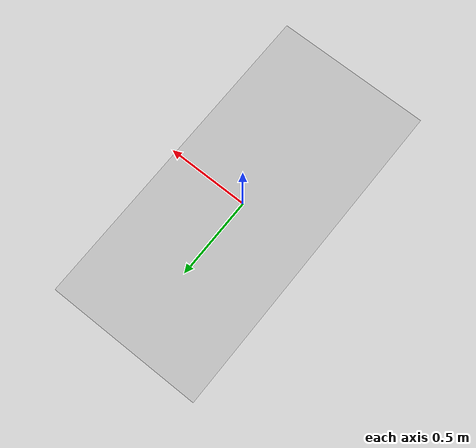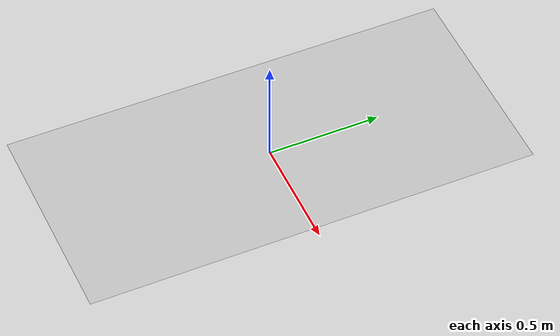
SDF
<?xml version='1.0'?>
<sdf version='1.4'>
  <model name="airport_mat">
    <static>true</static>
    <pose>0 0 0 0 0 0</pose>

    <link name="airport_mat">
      <pose>0 0 0.02 0 0 0</pose>
      <visual name="mat">
        <geometry>
          <mesh>
            <uri>model://airport_mat/airport_mat.dae</uri>
          </mesh>
        </geometry>
      </visual>
    </link>

  </model>
</sdf>
